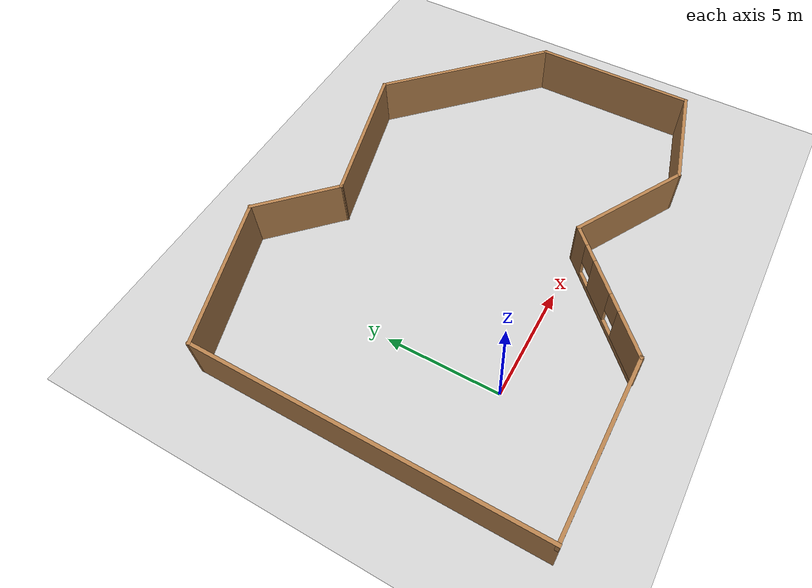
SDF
<sdf version="1.7">
 <world name="default">
  <light name="sun" type="directional">
   <pose>0 0 10 0 -0 0</pose>
   <diffuse>0.8 0.8 0.8 1</diffuse>
   <specular>0.2 0.2 0.2 1</specular>
   <attenuation>
    <range>1000</range>
    <constant>0.9</constant>
    <linear>0.01</linear>
    <quadratic>0.001</quadratic>
   </attenuation>
   <direction>-0.5 0.1 -0.9</direction>
   <spot><inner_angle>0</inner_angle><outer_angle>0</outer_angle><falloff>0</falloff></spot>
  </light>
  <model name="ground_plane">
   <static>1</static>
   <link name="link">
    <collision name="collision">
     <geometry><plane><normal>0 0 1</normal><size>100 100</size></plane></geometry>
     <surface>
      <contact><collide_bitmask>65535</collide_bitmask></contact>
      <friction><ode><mu>100</mu><mu2>50</mu2></ode></friction>
     </surface>
    </collision>
    <visual name="visual">
     <cast_shadows>0</cast_shadows>
     <geometry><plane><normal>0 0 1</normal><size>100 100</size></plane></geometry>
     <material>
      <script><uri>file://media/materials/scripts/gazebo.material</uri><name>Gazebo/Grey</name></script>
     </material>
    </visual>
   </link>
  </model>
  <gravity>0 0 -9.8</gravity>
  <magnetic_field>6e-06 2.3e-05 -4.2e-05</magnetic_field>
  <atmosphere type="adiabatic"/>
  <physics type="ode">
   <max_step_size>0.001</max_step_size>
   <real_time_factor>1</real_time_factor>
   <real_time_update_rate>1000</real_time_update_rate>
  </physics>
  <scene><ambient>0.4 0.4 0.4 1</ambient><background>0.7 0.7 0.7 1</background><shadows>1</shadows></scene>
  <spherical_coordinates>
   <surface_model>EARTH_WGS84</surface_model>
   <latitude_deg>0</latitude_deg>
   <longitude_deg>0</longitude_deg>
   <elevation>0</elevation>
   <heading_deg>0</heading_deg>
  </spherical_coordinates>
  <model name="Untitled">
   <pose>5.80967 4.12209 -0.234165 0 -0 0</pose>
   <link name="Wall_10">
    <collision name="Wall_10_Collision">
     <geometry><box><size>5.5 0.15 2.5</size></box></geometry>
     <pose>0 0 1.25 0 -0 0</pose>
    </collision>
    <visual name="Wall_10_Visual">
     <pose>0 0 1.25 0 -0 0</pose>
     <geometry><box><size>5.5 0.15 2.5</size></box></geometry>
     <material>
      <script><uri>file://media/materials/scripts/gazebo.material</uri><name>Gazebo/Wood</name></script>
      <ambient>1 1 1 1</ambient>
     </material>
     <meta><layer>0</layer></meta>
    </visual>
    <pose>3.60266 -5.39182 0 0 -0 2.61799</pose>
   </link>
   <link name="Wall_11">
    <pose>-0.870631 -6.211 0 0 -0 -2.35619</pose>
    <visual name="Wall_11_Visual_0">
     <pose>-2.63202 0 1.25 0 -0 0</pose>
     <geometry><box><size>0.985966 0.15 2.5</size></box></geometry>
     <material>
      <script><uri>file://media/materials/scripts/gazebo.material</uri><name>Gazebo/Wood</name></script>
      <ambient>1 1 1 1</ambient>
     </material>
     <meta><layer>0</layer></meta>
    </visual>
    <collision name="Wall_11_Collision_0">
     <geometry><box><size>0.985966 0.15 2.5</size></box></geometry>
     <pose>-2.63202 0 1.25 0 -0 0</pose>
    </collision>
    <visual name="Wall_11_Visual_1">
     <pose>0.492983 0 0.25 0 -0 0</pose>
     <geometry><box><size>5.26403 0.15 0.5</size></box></geometry>
     <material>
      <script><uri>file://media/materials/scripts/gazebo.material</uri><name>Gazebo/Wood</name></script>
      <ambient>1 1 1 1</ambient>
     </material>
     <meta><layer>0</layer></meta>
    </visual>
    <collision name="Wall_11_Collision_1">
     <geometry><box><size>5.26403 0.15 0.5</size></box></geometry>
     <pose>0.492983 0 0.25 0 -0 0</pose>
    </collision>
    <visual name="Wall_11_Visual_2">
     <pose>-0.551095 0 1.5 0 -0 0</pose>
     <geometry><box><size>1.57588 0.15 2</size></box></geometry>
     <material>
      <script><uri>file://media/materials/scripts/gazebo.material</uri><name>Gazebo/Wood</name></script>
      <ambient>1 1 1 1</ambient>
     </material>
     <meta><layer>0</layer></meta>
    </visual>
    <collision name="Wall_11_Collision_2">
     <geometry><box><size>1.57588 0.15 2</size></box></geometry>
     <pose>-0.551095 0 1.5 0 -0 0</pose>
    </collision>
    <visual name="Wall_11_Visual_3">
     <pose>2.08092 0 1.5 0 -0 0</pose>
     <geometry><box><size>2.08815 0.15 2</size></box></geometry>
     <material>
      <script><uri>file://media/materials/scripts/gazebo.material</uri><name>Gazebo/Wood</name></script>
      <ambient>1 1 1 1</ambient>
     </material>
     <meta><layer>0</layer></meta>
    </visual>
    <collision name="Wall_11_Collision_3">
     <geometry><box><size>2.08815 0.15 2</size></box></geometry>
     <pose>2.08092 0 1.5 0 -0 0</pose>
    </collision>
    <visual name="Wall_11_Visual_4">
     <pose>-1.73903 0 1.9 0 -0 0</pose>
     <geometry><box><size>0.8 0.15 1.2</size></box></geometry>
     <material>
      <script><uri>file://media/materials/scripts/gazebo.material</uri><name>Gazebo/Wood</name></script>
      <ambient>1 1 1 1</ambient>
     </material>
     <meta><layer>0</layer></meta>
    </visual>
    <collision name="Wall_11_Collision_4">
     <geometry><box><size>0.8 0.15 1.2</size></box></geometry>
     <pose>-1.73903 0 1.9 0 -0 0</pose>
    </collision>
    <visual name="Wall_11_Visual_5">
     <pose>0.636845 0 1.9 0 -0 0</pose>
     <geometry><box><size>0.8 0.15 1.2</size></box></geometry>
     <material>
      <script><uri>file://media/materials/scripts/gazebo.material</uri><name>Gazebo/Wood</name></script>
      <ambient>1 1 1 1</ambient>
     </material>
     <meta><layer>0</layer></meta>
    </visual>
    <collision name="Wall_11_Collision_5">
     <geometry><box><size>0.8 0.15 1.2</size></box></geometry>
     <pose>0.636845 0 1.9 0 -0 0</pose>
    </collision>
   </link>
   <link name="Wall_12">
    <pose>-6.70231 -8.36767 0 0 -0 3.14159</pose>
    <visual name="Wall_12_Visual_0">
     <pose>-3.73062 0 1.25 0 -0 0</pose>
     <geometry><box><size>0.038754 0.15 2.5</size></box></geometry>
     <material>
      <script><uri>file://media/materials/scripts/gazebo.material</uri><name>Gazebo/Wood</name></script>
      <ambient>0.435294 0.796078 0.67451 1</ambient>
     </material>
     <meta><layer>0</layer></meta>
    </visual>
    <collision name="Wall_12_Collision_0">
     <geometry><box><size>0.038754 0.15 2.5</size></box></geometry>
     <pose>-3.73062 0 1.25 0 -0 0</pose>
    </collision>
    <visual name="Wall_12_Visual_1">
     <pose>0.019377 0 2.25 0 -0 0</pose>
     <geometry><box><size>7.46125 0.15 0.5</size></box></geometry>
     <material>
      <script><uri>file://media/materials/scripts/gazebo.material</uri><name>Gazebo/Wood</name></script>
      <ambient>0.435294 0.796078 0.67451 1</ambient>
     </material>
     <meta><layer>0</layer></meta>
    </visual>
    <collision name="Wall_12_Collision_1">
     <geometry><box><size>7.46125 0.15 0.5</size></box></geometry>
     <pose>0.019377 0 2.25 0 -0 0</pose>
    </collision>
   </link>
   <link name="Wall_3">
    <collision name="Wall_3_Collision">
     <geometry><box><size>15 0.15 2.5</size></box></geometry>
     <pose>0 0 1.25 0 -0 0</pose>
    </collision>
    <visual name="Wall_3_Visual">
     <pose>0 0 1.25 0 -0 0</pose>
     <geometry><box><size>15 0.15 2.5</size></box></geometry>
     <material>
      <script><uri>file://media/materials/scripts/gazebo.material</uri><name>Gazebo/Wood</name></script>
      <ambient>1 1 1 1</ambient>
     </material>
     <meta><layer>0</layer></meta>
    </visual>
    <pose>-10.3746 -0.960829 0 0 -0 1.5708</pose>
   </link>
   <link name="Wall_4">
    <collision name="Wall_4_Collision">
     <geometry><box><size>6.59725 0.15 2.5</size></box></geometry>
     <pose>0 0 1.25 0 -0 0</pose>
    </collision>
    <visual name="Wall_4_Visual">
     <pose>0 0 1.25 0 -0 0</pose>
     <geometry><box><size>6.59725 0.15 2.5</size></box></geometry>
     <material>
      <script><uri>file://media/materials/scripts/gazebo.material</uri><name>Gazebo/Wood</name></script>
      <ambient>1 1 1 1</ambient>
     </material>
     <meta><layer>0</layer></meta>
    </visual>
    <pose>-7.29783 7.40592 0 0 -0 0.302958</pose>
   </link>
   <link name="Wall_5">
    <collision name="Wall_5_Collision">
     <geometry><box><size>4 0.15 2.5</size></box></geometry>
     <pose>0 0 1.25 0 -0 0</pose>
    </collision>
    <visual name="Wall_5_Visual">
     <pose>0 0 1.25 0 -0 0</pose>
     <geometry><box><size>4 0.15 2.5</size></box></geometry>
     <material>
      <script><uri>file://media/materials/scripts/gazebo.material</uri><name>Gazebo/Wood</name></script>
      <ambient>1 1 1 1</ambient>
     </material>
     <meta><layer>0</layer></meta>
    </visual>
    <pose>-2.85984 7.00649 0 0 -0 -0.785398</pose>
   </link>
   <link name="Wall_6">
    <collision name="Wall_6_Collision">
     <geometry><box><size>6.5 0.15 2.5</size></box></geometry>
     <pose>0 0 1.25 0 -0 0</pose>
    </collision>
    <visual name="Wall_6_Visual">
     <pose>0 0 1.25 0 -0 0</pose>
     <geometry><box><size>6.5 0.15 2.5</size></box></geometry>
     <material>
      <script><uri>file://media/materials/scripts/gazebo.material</uri><name>Gazebo/Wood</name></script>
      <ambient>1 1 1 1</ambient>
     </material>
     <meta><layer>0</layer></meta>
    </visual>
    <pose>1.56816 6.46706 0 0 -0 0.261799</pose>
   </link>
   <link name="Wall_7">
    <collision name="Wall_7_Collision">
     <geometry><box><size>8.25 0.15 2.5</size></box></geometry>
     <pose>0 0 1.25 0 -0 0</pose>
    </collision>
    <visual name="Wall_7_Visual">
     <pose>0 0 1.25 0 -0 0</pose>
     <geometry><box><size>8.25 0.15 2.5</size></box></geometry>
     <material>
      <script><uri>file://media/materials/scripts/gazebo.material</uri><name>Gazebo/Wood</name></script>
      <ambient>1 1 1 1</ambient>
     </material>
     <meta><layer>0</layer></meta>
    </visual>
    <pose>7.49876 4.42503 0 0 -0 -0.785398</pose>
   </link>
   <link name="Wall_8">
    <collision name="Wall_8_Collision">
     <geometry><box><size>7.25 0.15 2.5</size></box></geometry>
     <pose>0 0 1.25 0 -0 0</pose>
    </collision>
    <visual name="Wall_8_Visual">
     <pose>0 0 1.25 0 -0 0</pose>
     <geometry><box><size>7.25 0.15 2.5</size></box></geometry>
     <material>
      <script><uri>file://media/materials/scripts/gazebo.material</uri><name>Gazebo/Wood</name></script>
      <ambient>1 1 1 1</ambient>
     </material>
     <meta><layer>0</layer></meta>
    </visual>
    <pose>10.3625 -1.98875 0 0 -0 -1.5708</pose>
   </link>
   <link name="Wall_9">
    <collision name="Wall_9_Collision">
     <geometry><box><size>4.75 0.15 2.5</size></box></geometry>
     <pose>0 0 1.25 0 -0 0</pose>
    </collision>
    <visual name="Wall_9_Visual">
     <pose>0 0 1.25 0 -0 0</pose>
     <geometry><box><size>4.75 0.15 2.5</size></box></geometry>
     <material>
      <script><uri>file://media/materials/scripts/gazebo.material</uri><name>Gazebo/Wood</name></script>
      <ambient>1 1 1 1</ambient>
     </material>
     <meta><layer>0</layer></meta>
    </visual>
    <pose>8.14091 -6.13404 0 0 -0 -2.87979</pose>
   </link>
   <static>1</static>
  </model>
 </world>
</sdf>
